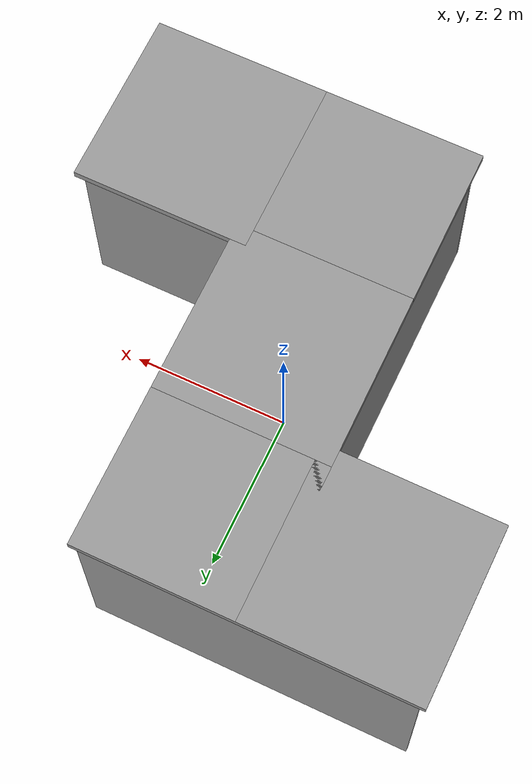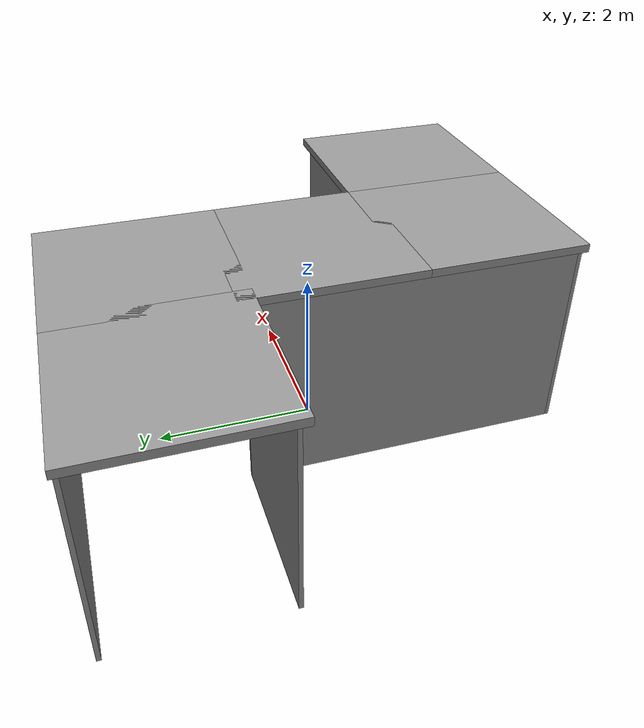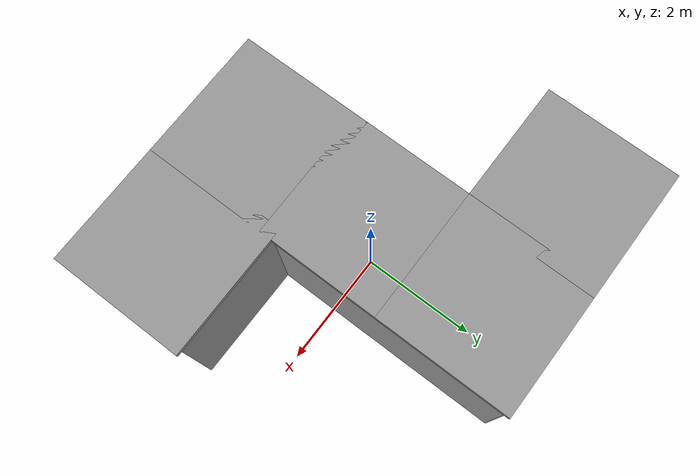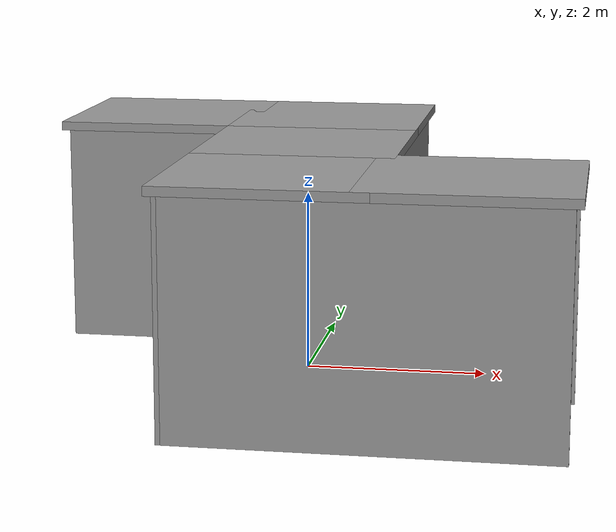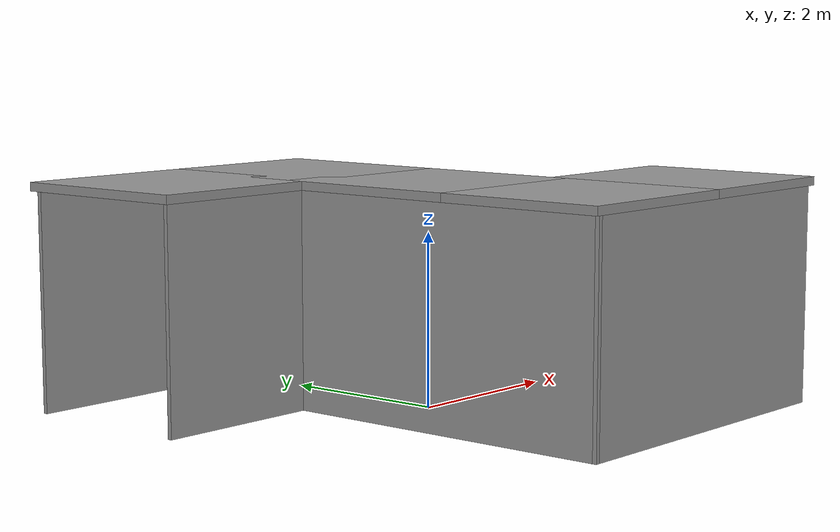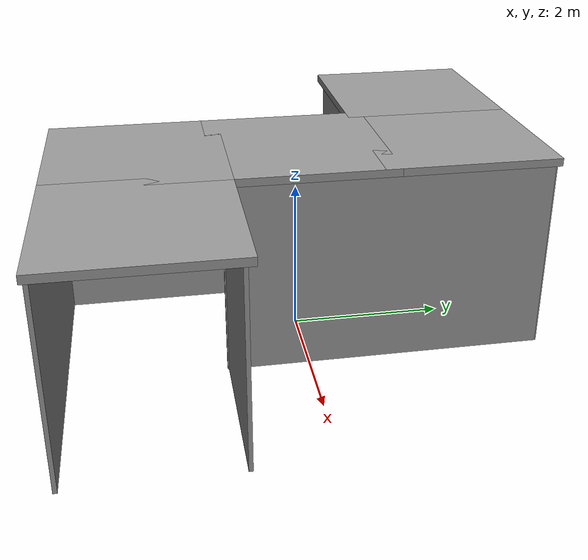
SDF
<?xml version='1.0'?>
<sdf version='1.6'>
  <model name='house_1'>
    <pose frame=''>0 0 0 0 -0 0</pose>

    <!-- Walls -->
    <link name='Wall_100'>
      <collision name='Wall_100_Collision'>
        <geometry>
          <box>
            <size>4.1 0.05 2.5</size>
          </box>
        </geometry>
        <pose frame=''>0 0 1.25 0 -0 0</pose>
      </collision>
      <visual name='Wall_100_Visual'>
        <pose frame=''>0 0 1.25 0 -0 0</pose>
        <geometry>
          <box>
            <size>4.1 0.05 2.5</size>
          </box>
        </geometry>
        <material>
          <script>
            <uri>file://media/materials/scripts/gazebo.material</uri>
            <name>Gazebo/Grey</name>
          </script>
          <ambient>1 1 1 1</ambient>
        </material>
        <meta>
          <layer>0</layer>
        </meta>
      </visual>
      <pose frame=''>-1 -1.025 0 0 -0 1.5708</pose>
    </link>

    <link name='Wall_102'>
      <collision name='Wall_102_Collision'>
        <geometry>
          <box>
            <size>2.05 0.05 2.5</size>
          </box>
        </geometry>
        <pose frame=''>0 0 1.25 0 -0 0</pose>
      </collision>
      <visual name='Wall_102_Visual'>
        <pose frame=''>0 0 1.25 0 -0 0</pose>
        <geometry>
          <box>
            <size>2.05 0.05 2.5</size>
          </box>
        </geometry>
        <material>
          <script>
            <uri>file://media/materials/scripts/gazebo.material</uri>
            <name>Gazebo/Grey</name>
          </script>
          <ambient>1 1 1 1</ambient>
        </material>
        <meta>
          <layer>0</layer>
        </meta>
      </visual>
      <pose frame=''>-2 1 0 0 -0 3.14159</pose>
    </link>

    <link name='Wall_81'>
      <collision name='Wall_81_Collision'>
        <geometry>
          <box>
            <size>4.05 0.05 2.5</size>
          </box>
        </geometry>
        <pose frame=''>0 0 1.25 0 -0 0</pose>
      </collision>
      <visual name='Wall_81_Visual'>
        <pose frame=''>0 0 1.25 0 -0 0</pose>
        <geometry>
          <box>
            <size>4.05 0.05 2.5</size>
          </box>
        </geometry>
        <material>
          <script>
            <uri>file://media/materials/scripts/gazebo.material</uri>
            <name>Gazebo/Grey</name>
          </script>
          <ambient>1 1 1 1</ambient>
        </material>
        <meta>
          <layer>0</layer>
        </meta>
      </visual>
      <pose frame=''>-1 3.05 0 0 -0 0</pose>
    </link>

    <link name='Wall_83'>
      <collision name='Wall_83_Collision'>
        <geometry>
          <box>
            <size>4.1 0.05 2.5</size>
          </box>
        </geometry>
        <pose frame=''>0 0 1.25 0 -0 0</pose>
      </collision>
      <visual name='Wall_83_Visual'>
        <pose frame=''>0 0 1.25 0 -0 0</pose>
        <geometry>
          <box>
            <size>4.1 0.05 2.5</size>
          </box>
        </geometry>
        <material>
          <script>
            <uri>file://media/materials/scripts/gazebo.material</uri>
            <name>Gazebo/Grey</name>
          </script>
          <ambient>1 1 1 1</ambient>
        </material>
        <meta>
          <layer>0</layer>
        </meta>
      </visual>
      <pose frame=''>1 1.01005 0 0 -0 -1.5708</pose>
    </link>

    <link name='Wall_94'>
      <collision name='Wall_94_Collision'>
        <geometry>
          <box>
            <size>2.05 0.05 2.5</size>
          </box>
        </geometry>
        <pose frame=''>0 0 1.25 0 -0 0</pose>
      </collision>
      <visual name='Wall_94_Visual'>
        <pose frame=''>0 0 1.25 0 -0 0</pose>
        <geometry>
          <box>
            <size>2.05 0.05 2.5</size>
          </box>
        </geometry>
        <material>
          <script>
            <uri>file://media/materials/scripts/gazebo.material</uri>
            <name>Gazebo/Grey</name>
          </script>
          <ambient>1 1 1 1</ambient>
        </material>
        <meta>
          <layer>0</layer>
        </meta>
      </visual>
      <pose frame=''>2 -1 0 0 -0 0</pose>
    </link>

    <link name='Wall_98'>
      <collision name='Wall_98_Collision'>
        <geometry>
          <box>
            <size>4.05 0.05 2.5</size>
          </box>
        </geometry>
        <pose frame=''>0 0 1.25 0 -0 0</pose>
      </collision>
      <visual name='Wall_98_Visual'>
        <pose frame=''>0 0 1.25 0 -0 0</pose>
        <geometry>
          <box>
            <size>4.05 0.05 2.5</size>
          </box>
        </geometry>
        <material>
          <script>
            <uri>file://media/materials/scripts/gazebo.material</uri>
            <name>Gazebo/Grey</name>
          </script>
          <ambient>1 1 1 1</ambient>
        </material>
        <meta>
          <layer>0</layer>
        </meta>
      </visual>
      <pose frame=''>1 -3.05 0 0 -0 3.14159</pose>
    </link>

    <!-- Ceiling -->
    <include>
        <uri>model://2020_2.2ceiling</uri>
        <name>ceiling_0</name>
        <pose>-2 2 2.5 0 0 0</pose>
    </include>

    <include>
        <uri>model://2020_2.2ceiling</uri>
        <name>ceiling_1</name>
        <pose>0 2 2.5 0 0 0</pose>
    </include>

    <include>
        <uri>model://2020_2.2ceiling</uri>
        <name>ceiling_2</name>
        <pose>0 0 2.5 0 0 0</pose>
    </include>

    <include>
        <uri>model://2020_2.2ceiling</uri>
        <name>ceiling_3</name>
        <pose>0 -2 2.5 0 0 0</pose>
    </include>

    <include>
        <uri>model://2020_2.2ceiling</uri>
        <name>ceiling_4</name>
        <pose>2 -2 2.5 0 0 0</pose>
    </include>

    <static>1</static>
  </model>
</sdf>

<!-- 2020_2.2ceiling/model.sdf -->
<sdf version='1.6'>
  <model name='2.2ceiling'>
    <pose frame=''>0 0 0 0 -0 0</pose>
    <link name='Wall_175'>
      <collision name='Wall_175_Collision'>
        <geometry>
          <box>
            <size>2.21 2.2 0.1</size>
          </box>
        </geometry>
        <pose frame=''>0 0 0.05 0 -0 0</pose>
      </collision>
      <visual name='Wall_175_Visual'>
        <pose frame=''>0 0 0.05 0 -0 0</pose>
        <geometry>
          <box>
            <size>2.21 2.2 0.1</size>
          </box>
        </geometry>
        <material>
          <script>
            <uri>file://media/materials/scripts/gazebo.material</uri>
            <name>Gazebo/Grey</name>
          </script>
          <ambient>1 1 1 1</ambient>
        </material>
        <meta>
          <layer>0</layer>
        </meta>
      </visual>
      <pose frame=''>-0 0 0 0 -0 -1.5708</pose>
    </link>
    <static>1</static>
  </model>
</sdf>
